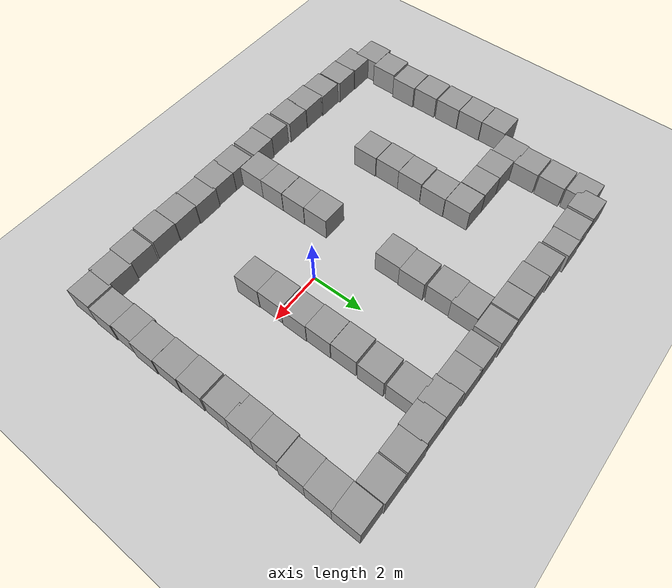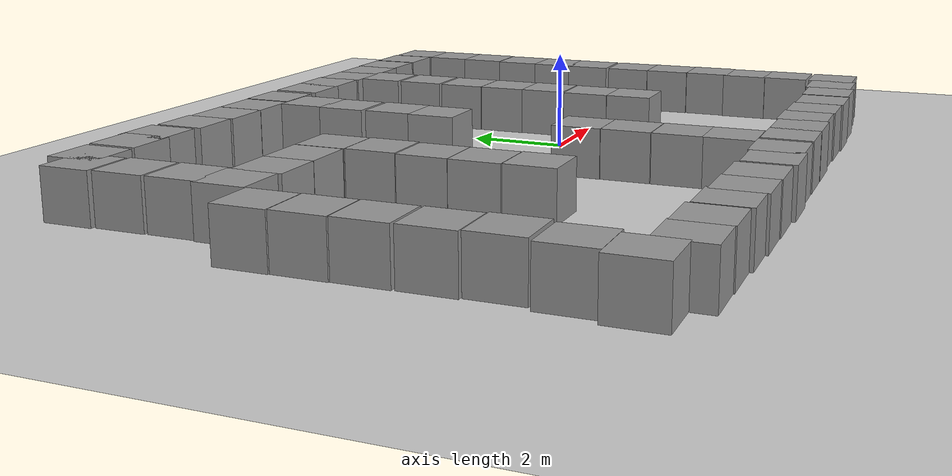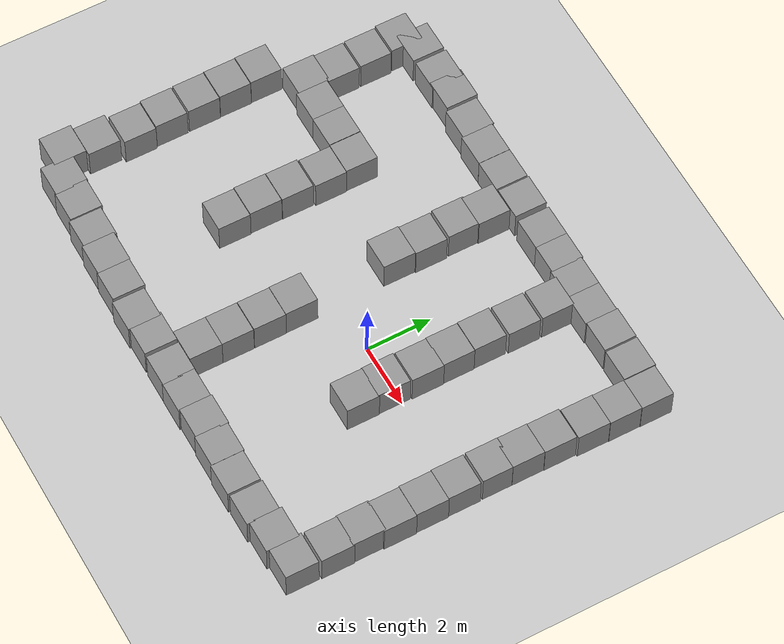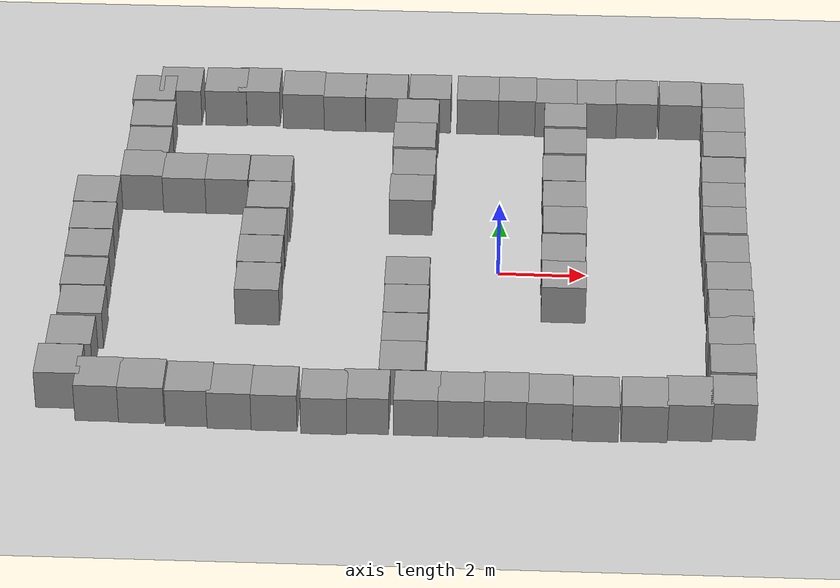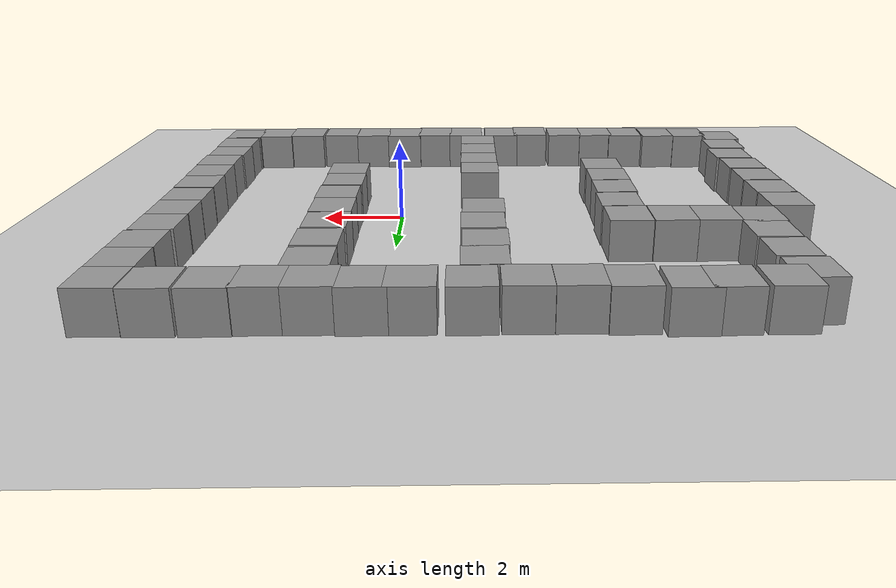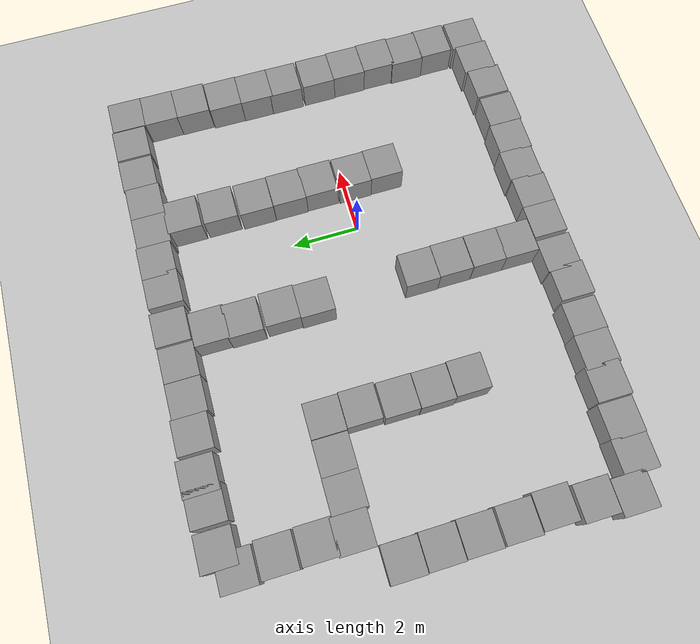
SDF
<sdf version="1.3">
 <world name="default">
  <light name="sun" type="directional">
   <pose>0.000000 0.000000 10.000000 0.000000 0.000000 0.000000</pose>
   <diffuse>0.800000 0.800000 0.800000 1.000000</diffuse>
   <specular>0.100000 0.100000 0.100000 1.000000</specular>
   <attenuation>
    <range>1000.000000</range>
    <constant>0.900000</constant>
    <linear>0.010000</linear>
    <quadratic>0.001000</quadratic>
   </attenuation>
   <direction>-0.500000 0.500000 -1.000000</direction>
  </light>
  <model name="ground_plane">
   <static>1</static>
   <link name="link">
    <collision name="collision">
     <geometry>
      <plane><normal>0.000000 0.000000 1.000000</normal><size>100.000000 100.000000</size></plane>
     </geometry>
     <surface><friction><ode><mu>100.000000</mu><mu2>50.000000</mu2></ode></friction></surface>
    </collision>
    <visual name="visual">
     <cast_shadows>0</cast_shadows>
     <geometry>
      <plane><normal>0.000000 0.000000 1.000000</normal><size>100.000000 100.000000</size></plane>
     </geometry>
     <material>
      <script><uri>file://media/materials/scripts/gazebo.material</uri><name>Gazebo/Grey</name></script>
     </material>
    </visual>
    <velocity_decay><linear>0.000000</linear><angular>0.000000</angular></velocity_decay>
   </link>
  </model>
  <physics type="ode">
   <update_rate>1000.000000</update_rate>
   <gravity>0.000000 0.000000 -9.800000</gravity>
  </physics>
  <scene>
   <ambient>0.200000 0.200000 0.200000 1.000000</ambient>
   <background>0.700000 0.700000 0.700000 1.000000</background>
   <shadows>1</shadows>
  </scene>
  <model name="ground_plane">
   <static>1</static>
   <link name="link">
    <collision name="collision">
     <geometry><plane><normal>0 0 1</normal><size>100 100</size></plane></geometry>
     <surface><friction><ode><mu>100</mu><mu2>50</mu2></ode></friction></surface>
    </collision>
    <visual name="visual">
     <cast_shadows>0</cast_shadows>
     <geometry><plane><normal>0 0 1</normal><size>100 100</size></plane></geometry>
     <material>
      <script><uri>file://media/materials/scripts/gazebo.material</uri><name>Gazebo/Grey</name></script>
     </material>
    </visual>
    <velocity_decay><linear>0</linear><angular>0</angular></velocity_decay>
   </link>
  </model>
  <physics name="default_physics" default="0" type="ode">
   <real_time_update_rate>1000</real_time_update_rate>
   <max_step_size>0.001</max_step_size>
   <real_time_factor>1</real_time_factor>
  </physics>
  <scene><ambient>0.2 0.2 0.2 1</ambient><background>0.7 0.7 0.7 1</background><shadows>1</shadows></scene>
  <model name="unit_box_0_3">
   <pose>5.24973 5.86866 0.5 0 -0 0</pose>
   <link name="link">
    <inertial>
     <mass>1</mass>
     <inertia>
      <ixx>0.166667</ixx>
      <ixy>0</ixy>
      <ixz>0</ixz>
      <iyy>0.166667</iyy>
      <iyz>0</iyz>
      <izz>0.166667</izz>
     </inertia>
    </inertial>
    <collision name="collision"><geometry><box><size>1 1 1</size></box></geometry></collision>
    <visual name="visual">
     <geometry><box><size>1 1 1</size></box></geometry>
     <material>
      <script><name>Gazebo/Grey</name><uri>file://media/materials/scripts/gazebo.material</uri></script>
     </material>
    </visual>
   </link>
  </model>
  <model name="unit_box_0_4">
   <pose>4.22875 5.90713 0.5 0 -0 0</pose>
   <link name="link">
    <inertial>
     <mass>1</mass>
     <inertia>
      <ixx>0.166667</ixx>
      <ixy>0</ixy>
      <ixz>0</ixz>
      <iyy>0.166667</iyy>
      <iyz>0</iyz>
      <izz>0.166667</izz>
     </inertia>
    </inertial>
    <collision name="collision"><geometry><box><size>1 1 1</size></box></geometry></collision>
    <visual name="visual">
     <geometry><box><size>1 1 1</size></box></geometry>
     <material>
      <script><name>Gazebo/Grey</name><uri>file://media/materials/scripts/gazebo.material</uri></script>
     </material>
    </visual>
   </link>
  </model>
  <model name="unit_box_0_5">
   <pose>3.18023 5.91348 0.5 0 -0 0</pose>
   <link name="link">
    <inertial>
     <mass>1</mass>
     <inertia>
      <ixx>0.166667</ixx>
      <ixy>0</ixy>
      <ixz>0</ixz>
      <iyy>0.166667</iyy>
      <iyz>0</iyz>
      <izz>0.166667</izz>
     </inertia>
    </inertial>
    <collision name="collision"><geometry><box><size>1 1 1</size></box></geometry></collision>
    <visual name="visual">
     <geometry><box><size>1 1 1</size></box></geometry>
     <material>
      <script><name>Gazebo/Grey</name><uri>file://media/materials/scripts/gazebo.material</uri></script>
     </material>
    </visual>
   </link>
  </model>
  <model name="unit_box_0_6">
   <pose>5.23691 4.88018 0.5 0 -0 0</pose>
   <link name="link">
    <inertial>
     <mass>1</mass>
     <inertia>
      <ixx>0.166667</ixx>
      <ixy>0</ixy>
      <ixz>0</ixz>
      <iyy>0.166667</iyy>
      <iyz>0</iyz>
      <izz>0.166667</izz>
     </inertia>
    </inertial>
    <collision name="collision"><geometry><box><size>1 1 1</size></box></geometry></collision>
    <visual name="visual">
     <geometry><box><size>1 1 1</size></box></geometry>
     <material>
      <script><name>Gazebo/Grey</name><uri>file://media/materials/scripts/gazebo.material</uri></script>
     </material>
    </visual>
   </link>
  </model>
  <model name="unit_box_0_7">
   <pose>5.2245 3.89038 0.5 0 -0 0</pose>
   <link name="link">
    <inertial>
     <mass>1</mass>
     <inertia>
      <ixx>0.166667</ixx>
      <ixy>0</ixy>
      <ixz>0</ixz>
      <iyy>0.166667</iyy>
      <iyz>0</iyz>
      <izz>0.166667</izz>
     </inertia>
    </inertial>
    <collision name="collision"><geometry><box><size>1 1 1</size></box></geometry></collision>
    <visual name="visual">
     <geometry><box><size>1 1 1</size></box></geometry>
     <material>
      <script><name>Gazebo/Grey</name><uri>file://media/materials/scripts/gazebo.material</uri></script>
     </material>
    </visual>
   </link>
  </model>
  <model name="unit_box_0_8">
   <pose>5.17263 2.86864 0.5 0 -0 0</pose>
   <link name="link">
    <inertial>
     <mass>1</mass>
     <inertia>
      <ixx>0.166667</ixx>
      <ixy>0</ixy>
      <ixz>0</ixz>
      <iyy>0.166667</iyy>
      <iyz>0</iyz>
      <izz>0.166667</izz>
     </inertia>
    </inertial>
    <collision name="collision"><geometry><box><size>1 1 1</size></box></geometry></collision>
    <visual name="visual">
     <geometry><box><size>1 1 1</size></box></geometry>
     <material>
      <script><name>Gazebo/Grey</name><uri>file://media/materials/scripts/gazebo.material</uri></script>
     </material>
    </visual>
   </link>
  </model>
  <model name="unit_box_0_9">
   <pose>5.16003 1.87663 0.5 0 -0 0</pose>
   <link name="link">
    <inertial>
     <mass>1</mass>
     <inertia>
      <ixx>0.166667</ixx>
      <ixy>0</ixy>
      <ixz>0</ixz>
      <iyy>0.166667</iyy>
      <iyz>0</iyz>
      <izz>0.166667</izz>
     </inertia>
    </inertial>
    <collision name="collision"><geometry><box><size>1 1 1</size></box></geometry></collision>
    <visual name="visual">
     <geometry><box><size>1 1 1</size></box></geometry>
     <material>
      <script><name>Gazebo/Grey</name><uri>file://media/materials/scripts/gazebo.material</uri></script>
     </material>
    </visual>
   </link>
  </model>
  <model name="unit_box_0_10">
   <pose>5.15547 0.951197 0.5 0 -0 0</pose>
   <link name="link">
    <inertial>
     <mass>1</mass>
     <inertia>
      <ixx>0.166667</ixx>
      <ixy>0</ixy>
      <ixz>0</ixz>
      <iyy>0.166667</iyy>
      <iyz>0</iyz>
      <izz>0.166667</izz>
     </inertia>
    </inertial>
    <collision name="collision"><geometry><box><size>1 1 1</size></box></geometry></collision>
    <visual name="visual">
     <geometry><box><size>1 1 1</size></box></geometry>
     <material>
      <script><name>Gazebo/Grey</name><uri>file://media/materials/scripts/gazebo.material</uri></script>
     </material>
    </visual>
   </link>
  </model>
  <model name="unit_box_0_11">
   <pose>5.17051 -0.115217 0.5 0 -0 0</pose>
   <link name="link">
    <inertial>
     <mass>1</mass>
     <inertia>
      <ixx>0.166667</ixx>
      <ixy>0</ixy>
      <ixz>0</ixz>
      <iyy>0.166667</iyy>
      <iyz>0</iyz>
      <izz>0.166667</izz>
     </inertia>
    </inertial>
    <collision name="collision"><geometry><box><size>1 1 1</size></box></geometry></collision>
    <visual name="visual">
     <geometry><box><size>1 1 1</size></box></geometry>
     <material>
      <script><name>Gazebo/Grey</name><uri>file://media/materials/scripts/gazebo.material</uri></script>
     </material>
    </visual>
   </link>
  </model>
  <model name="unit_box_0_12">
   <pose>5.19314 -1.11487 0.5 0 -0 0</pose>
   <link name="link">
    <inertial>
     <mass>1</mass>
     <inertia>
      <ixx>0.166667</ixx>
      <ixy>0</ixy>
      <ixz>0</ixz>
      <iyy>0.166667</iyy>
      <iyz>0</iyz>
      <izz>0.166667</izz>
     </inertia>
    </inertial>
    <collision name="collision"><geometry><box><size>1 1 1</size></box></geometry></collision>
    <visual name="visual">
     <geometry><box><size>1 1 1</size></box></geometry>
     <material>
      <script><name>Gazebo/Grey</name><uri>file://media/materials/scripts/gazebo.material</uri></script>
     </material>
    </visual>
   </link>
  </model>
  <model name="unit_box_0_13">
   <pose>5.21609 -2.11612 0.5 0 -0 0</pose>
   <link name="link">
    <inertial>
     <mass>1</mass>
     <inertia>
      <ixx>0.166667</ixx>
      <ixy>0</ixy>
      <ixz>0</ixz>
      <iyy>0.166667</iyy>
      <iyz>0</iyz>
      <izz>0.166667</izz>
     </inertia>
    </inertial>
    <collision name="collision"><geometry><box><size>1 1 1</size></box></geometry></collision>
    <visual name="visual">
     <geometry><box><size>1 1 1</size></box></geometry>
     <material>
      <script><name>Gazebo/Grey</name><uri>file://media/materials/scripts/gazebo.material</uri></script>
     </material>
    </visual>
   </link>
  </model>
  <model name="unit_box_0_14">
   <pose>5.17628 -3.04236 0.5 0 -0 0</pose>
   <link name="link">
    <inertial>
     <mass>1</mass>
     <inertia>
      <ixx>0.166667</ixx>
      <ixy>0</ixy>
      <ixz>0</ixz>
      <iyy>0.166667</iyy>
      <iyz>0</iyz>
      <izz>0.166667</izz>
     </inertia>
    </inertial>
    <collision name="collision"><geometry><box><size>1 1 1</size></box></geometry></collision>
    <visual name="visual">
     <geometry><box><size>1 1 1</size></box></geometry>
     <material>
      <script><name>Gazebo/Grey</name><uri>file://media/materials/scripts/gazebo.material</uri></script>
     </material>
    </visual>
   </link>
  </model>
  <model name="unit_box_0_15">
   <pose>5.20325 -4.01238 0.5 0 -0 0</pose>
   <link name="link">
    <inertial>
     <mass>1</mass>
     <inertia>
      <ixx>0.166667</ixx>
      <ixy>0</ixy>
      <ixz>0</ixz>
      <iyy>0.166667</iyy>
      <iyz>0</iyz>
      <izz>0.166667</izz>
     </inertia>
    </inertial>
    <collision name="collision"><geometry><box><size>1 1 1</size></box></geometry></collision>
    <visual name="visual">
     <geometry><box><size>1 1 1</size></box></geometry>
     <material>
      <script><name>Gazebo/Grey</name><uri>file://media/materials/scripts/gazebo.material</uri></script>
     </material>
    </visual>
   </link>
  </model>
  <model name="unit_box_0_16">
   <pose>5.18265 -5.08137 0.5 0 -0 0</pose>
   <link name="link">
    <inertial>
     <mass>1</mass>
     <inertia>
      <ixx>0.166667</ixx>
      <ixy>0</ixy>
      <ixz>0</ixz>
      <iyy>0.166667</iyy>
      <iyz>0</iyz>
      <izz>0.166667</izz>
     </inertia>
    </inertial>
    <collision name="collision"><geometry><box><size>1 1 1</size></box></geometry></collision>
    <visual name="visual">
     <geometry><box><size>1 1 1</size></box></geometry>
     <material>
      <script><name>Gazebo/Grey</name><uri>file://media/materials/scripts/gazebo.material</uri></script>
     </material>
    </visual>
   </link>
  </model>
  <model name="unit_box_0_17">
   <pose>4.2397 -5.1626 0.5 0 -0 0</pose>
   <link name="link">
    <inertial>
     <mass>1</mass>
     <inertia>
      <ixx>0.166667</ixx>
      <ixy>0</ixy>
      <ixz>0</ixz>
      <iyy>0.166667</iyy>
      <iyz>0</iyz>
      <izz>0.166667</izz>
     </inertia>
    </inertial>
    <collision name="collision"><geometry><box><size>1 1 1</size></box></geometry></collision>
    <visual name="visual">
     <geometry><box><size>1 1 1</size></box></geometry>
     <material>
      <script><name>Gazebo/Grey</name><uri>file://media/materials/scripts/gazebo.material</uri></script>
     </material>
    </visual>
   </link>
  </model>
  <model name="unit_box_0_18">
   <pose>3.27178 -5.23841 0.5 0 -0 0</pose>
   <link name="link">
    <inertial>
     <mass>1</mass>
     <inertia>
      <ixx>0.166667</ixx>
      <ixy>0</ixy>
      <ixz>0</ixz>
      <iyy>0.166667</iyy>
      <iyz>0</iyz>
      <izz>0.166667</izz>
     </inertia>
    </inertial>
    <collision name="collision"><geometry><box><size>1 1 1</size></box></geometry></collision>
    <visual name="visual">
     <geometry><box><size>1 1 1</size></box></geometry>
     <material>
      <script><name>Gazebo/Grey</name><uri>file://media/materials/scripts/gazebo.material</uri></script>
     </material>
    </visual>
   </link>
  </model>
  <model name="unit_box_0_19">
   <pose>2.20895 5.88237 0.5 0 -0 0</pose>
   <link name="link">
    <inertial>
     <mass>1</mass>
     <inertia>
      <ixx>0.166667</ixx>
      <ixy>0</ixy>
      <ixz>0</ixz>
      <iyy>0.166667</iyy>
      <iyz>0</iyz>
      <izz>0.166667</izz>
     </inertia>
    </inertial>
    <collision name="collision"><geometry><box><size>1 1 1</size></box></geometry></collision>
    <visual name="visual">
     <geometry><box><size>1 1 1</size></box></geometry>
     <material>
      <script><name>Gazebo/Grey</name><uri>file://media/materials/scripts/gazebo.material</uri></script>
     </material>
    </visual>
   </link>
  </model>
  <model name="unit_box_0_20">
   <pose>1.25233 5.88436 0.5 0 -0 0</pose>
   <link name="link">
    <inertial>
     <mass>1</mass>
     <inertia>
      <ixx>0.166667</ixx>
      <ixy>0</ixy>
      <ixz>0</ixz>
      <iyy>0.166667</iyy>
      <iyz>0</iyz>
      <izz>0.166667</izz>
     </inertia>
    </inertial>
    <collision name="collision"><geometry><box><size>1 1 1</size></box></geometry></collision>
    <visual name="visual">
     <geometry><box><size>1 1 1</size></box></geometry>
     <material>
      <script><name>Gazebo/Grey</name><uri>file://media/materials/scripts/gazebo.material</uri></script>
     </material>
    </visual>
   </link>
  </model>
  <model name="unit_box_0_21">
   <pose>2.21563 -5.26567 0.5 0 -0 0</pose>
   <link name="link">
    <inertial>
     <mass>1</mass>
     <inertia>
      <ixx>0.166667</ixx>
      <ixy>0</ixy>
      <ixz>0</ixz>
      <iyy>0.166667</iyy>
      <iyz>0</iyz>
      <izz>0.166667</izz>
     </inertia>
    </inertial>
    <collision name="collision"><geometry><box><size>1 1 1</size></box></geometry></collision>
    <visual name="visual">
     <geometry><box><size>1 1 1</size></box></geometry>
     <material>
      <script><name>Gazebo/Grey</name><uri>file://media/materials/scripts/gazebo.material</uri></script>
     </material>
    </visual>
   </link>
  </model>
  <model name="unit_box_0_22">
   <pose>1.21357 -5.23109 0.5 0 -0 0</pose>
   <link name="link">
    <inertial>
     <mass>1</mass>
     <inertia>
      <ixx>0.166667</ixx>
      <ixy>0</ixy>
      <ixz>0</ixz>
      <iyy>0.166667</iyy>
      <iyz>0</iyz>
      <izz>0.166667</izz>
     </inertia>
    </inertial>
    <collision name="collision"><geometry><box><size>1 1 1</size></box></geometry></collision>
    <visual name="visual">
     <geometry><box><size>1 1 1</size></box></geometry>
     <material>
      <script><name>Gazebo/Grey</name><uri>file://media/materials/scripts/gazebo.material</uri></script>
     </material>
    </visual>
   </link>
  </model>
  <model name="unit_box_0_23">
   <pose>0.256103 -5.20129 0.5 0 -0 0</pose>
   <link name="link">
    <inertial>
     <mass>1</mass>
     <inertia>
      <ixx>0.166667</ixx>
      <ixy>0</ixy>
      <ixz>0</ixz>
      <iyy>0.166667</iyy>
      <iyz>0</iyz>
      <izz>0.166667</izz>
     </inertia>
    </inertial>
    <collision name="collision"><geometry><box><size>1 1 1</size></box></geometry></collision>
    <visual name="visual">
     <geometry><box><size>1 1 1</size></box></geometry>
     <material>
      <script><name>Gazebo/Grey</name><uri>file://media/materials/scripts/gazebo.material</uri></script>
     </material>
    </visual>
   </link>
  </model>
  <model name="unit_box_0_24">
   <pose>0.276411 5.9219 0.5 0 -0 0</pose>
   <link name="link">
    <inertial>
     <mass>1</mass>
     <inertia>
      <ixx>0.166667</ixx>
      <ixy>0</ixy>
      <ixz>0</ixz>
      <iyy>0.166667</iyy>
      <iyz>0</iyz>
      <izz>0.166667</izz>
     </inertia>
    </inertial>
    <collision name="collision"><geometry><box><size>1 1 1</size></box></geometry></collision>
    <visual name="visual">
     <geometry><box><size>1 1 1</size></box></geometry>
     <material>
      <script><name>Gazebo/Grey</name><uri>file://media/materials/scripts/gazebo.material</uri></script>
     </material>
    </visual>
   </link>
  </model>
  <model name="unit_box_0_25">
   <pose>-0.626418 5.92112 0.5 0 -0 0</pose>
   <link name="link">
    <inertial>
     <mass>1</mass>
     <inertia>
      <ixx>0.166667</ixx>
      <ixy>0</ixy>
      <ixz>0</ixz>
      <iyy>0.166667</iyy>
      <iyz>0</iyz>
      <izz>0.166667</izz>
     </inertia>
    </inertial>
    <collision name="collision"><geometry><box><size>1 1 1</size></box></geometry></collision>
    <visual name="visual">
     <geometry><box><size>1 1 1</size></box></geometry>
     <material>
      <script><name>Gazebo/Grey</name><uri>file://media/materials/scripts/gazebo.material</uri></script>
     </material>
    </visual>
   </link>
  </model>
  <model name="unit_box_0_26">
   <pose>-0.698826 -5.23775 0.5 0 -0 0</pose>
   <link name="link">
    <inertial>
     <mass>1</mass>
     <inertia>
      <ixx>0.166667</ixx>
      <ixy>0</ixy>
      <ixz>0</ixz>
      <iyy>0.166667</iyy>
      <iyz>0</iyz>
      <izz>0.166667</izz>
     </inertia>
    </inertial>
    <collision name="collision"><geometry><box><size>1 1 1</size></box></geometry></collision>
    <visual name="visual">
     <geometry><box><size>1 1 1</size></box></geometry>
     <material>
      <script><name>Gazebo/Grey</name><uri>file://media/materials/scripts/gazebo.material</uri></script>
     </material>
    </visual>
   </link>
  </model>
  <model name="unit_box_0_27">
   <pose>-1.78068 5.93945 0.5 0 -0 0</pose>
   <link name="link">
    <inertial>
     <mass>1</mass>
     <inertia>
      <ixx>0.166667</ixx>
      <ixy>0</ixy>
      <ixz>0</ixz>
      <iyy>0.166667</iyy>
      <iyz>0</iyz>
      <izz>0.166667</izz>
     </inertia>
    </inertial>
    <collision name="collision"><geometry><box><size>1 1 1</size></box></geometry></collision>
    <visual name="visual">
     <geometry><box><size>1 1 1</size></box></geometry>
     <material>
      <script><name>Gazebo/Grey</name><uri>file://media/materials/scripts/gazebo.material</uri></script>
     </material>
    </visual>
   </link>
  </model>
  <model name="unit_box_0_28">
   <pose>-2.82699 5.91839 0.5 0 -0 0</pose>
   <link name="link">
    <inertial>
     <mass>1</mass>
     <inertia>
      <ixx>0.166667</ixx>
      <ixy>0</ixy>
      <ixz>0</ixz>
      <iyy>0.166667</iyy>
      <iyz>0</iyz>
      <izz>0.166667</izz>
     </inertia>
    </inertial>
    <collision name="collision"><geometry><box><size>1 1 1</size></box></geometry></collision>
    <visual name="visual">
     <geometry><box><size>1 1 1</size></box></geometry>
     <material>
      <script><name>Gazebo/Grey</name><uri>file://media/materials/scripts/gazebo.material</uri></script>
     </material>
    </visual>
   </link>
  </model>
  <model name="unit_box_0_29">
   <pose>1.4783 4.93269 0.5 0 -0 0</pose>
   <link name="link">
    <inertial>
     <mass>1</mass>
     <inertia>
      <ixx>0.166667</ixx>
      <ixy>0</ixy>
      <ixz>0</ixz>
      <iyy>0.166667</iyy>
      <iyz>0</iyz>
      <izz>0.166667</izz>
     </inertia>
    </inertial>
    <collision name="collision"><geometry><box><size>1 1 1</size></box></geometry></collision>
    <visual name="visual">
     <geometry><box><size>1 1 1</size></box></geometry>
     <material>
      <script><name>Gazebo/Grey</name><uri>file://media/materials/scripts/gazebo.material</uri></script>
     </material>
    </visual>
   </link>
  </model>
  <model name="unit_box_0_30">
   <pose>1.48551 3.86142 0.5 0 -0 0</pose>
   <link name="link">
    <inertial>
     <mass>1</mass>
     <inertia>
      <ixx>0.166667</ixx>
      <ixy>0</ixy>
      <ixz>0</ixz>
      <iyy>0.166667</iyy>
      <iyz>0</iyz>
      <izz>0.166667</izz>
     </inertia>
    </inertial>
    <collision name="collision"><geometry><box><size>1 1 1</size></box></geometry></collision>
    <visual name="visual">
     <geometry><box><size>1 1 1</size></box></geometry>
     <material>
      <script><name>Gazebo/Grey</name><uri>file://media/materials/scripts/gazebo.material</uri></script>
     </material>
    </visual>
   </link>
  </model>
  <model name="unit_box_0_31">
   <pose>1.45917 2.79176 0.5 0 -0 0</pose>
   <link name="link">
    <inertial>
     <mass>1</mass>
     <inertia>
      <ixx>0.166667</ixx>
      <ixy>0</ixy>
      <ixz>0</ixz>
      <iyy>0.166667</iyy>
      <iyz>0</iyz>
      <izz>0.166667</izz>
     </inertia>
    </inertial>
    <collision name="collision"><geometry><box><size>1 1 1</size></box></geometry></collision>
    <visual name="visual">
     <geometry><box><size>1 1 1</size></box></geometry>
     <material>
      <script><name>Gazebo/Grey</name><uri>file://media/materials/scripts/gazebo.material</uri></script>
     </material>
    </visual>
   </link>
  </model>
  <model name="unit_box_0_32">
   <pose>1.47478 1.78383 0.5 0 -0 0</pose>
   <link name="link">
    <inertial>
     <mass>1</mass>
     <inertia>
      <ixx>0.166667</ixx>
      <ixy>0</ixy>
      <ixz>0</ixz>
      <iyy>0.166667</iyy>
      <iyz>0</iyz>
      <izz>0.166667</izz>
     </inertia>
    </inertial>
    <collision name="collision"><geometry><box><size>1 1 1</size></box></geometry></collision>
    <visual name="visual">
     <geometry><box><size>1 1 1</size></box></geometry>
     <material>
      <script><name>Gazebo/Grey</name><uri>file://media/materials/scripts/gazebo.material</uri></script>
     </material>
    </visual>
   </link>
  </model>
  <model name="unit_box_0_33">
   <pose>1.49416 0.807626 0.5 0 -0 0</pose>
   <link name="link">
    <inertial>
     <mass>1</mass>
     <inertia>
      <ixx>0.166667</ixx>
      <ixy>0</ixy>
      <ixz>0</ixz>
      <iyy>0.166667</iyy>
      <iyz>0</iyz>
      <izz>0.166667</izz>
     </inertia>
    </inertial>
    <collision name="collision"><geometry><box><size>1 1 1</size></box></geometry></collision>
    <visual name="visual">
     <geometry><box><size>1 1 1</size></box></geometry>
     <material>
      <script><name>Gazebo/Grey</name><uri>file://media/materials/scripts/gazebo.material</uri></script>
     </material>
    </visual>
   </link>
  </model>
  <model name="unit_box_0_34">
   <pose>1.47068 -0.232937 0.5 0 -0 0</pose>
   <link name="link">
    <inertial>
     <mass>1</mass>
     <inertia>
      <ixx>0.166667</ixx>
      <ixy>0</ixy>
      <ixz>0</ixz>
      <iyy>0.166667</iyy>
      <iyz>0</iyz>
      <izz>0.166667</izz>
     </inertia>
    </inertial>
    <collision name="collision"><geometry><box><size>1 1 1</size></box></geometry></collision>
    <visual name="visual">
     <geometry><box><size>1 1 1</size></box></geometry>
     <material>
      <script><name>Gazebo/Grey</name><uri>file://media/materials/scripts/gazebo.material</uri></script>
     </material>
    </visual>
   </link>
  </model>
  <model name="unit_box_0_35">
   <pose>1.49013 -1.21214 0.5 0 -0 0</pose>
   <link name="link">
    <inertial>
     <mass>1</mass>
     <inertia>
      <ixx>0.166667</ixx>
      <ixy>0</ixy>
      <ixz>0</ixz>
      <iyy>0.166667</iyy>
      <iyz>0</iyz>
      <izz>0.166667</izz>
     </inertia>
    </inertial>
    <collision name="collision"><geometry><box><size>1 1 1</size></box></geometry></collision>
    <visual name="visual">
     <geometry><box><size>1 1 1</size></box></geometry>
     <material>
      <script><name>Gazebo/Grey</name><uri>file://media/materials/scripts/gazebo.material</uri></script>
     </material>
    </visual>
   </link>
  </model>
  <model name="unit_box_0_39">
   <pose>-1.65775 -5.2327 0.5 0 -0 0</pose>
   <link name="link">
    <inertial>
     <mass>1</mass>
     <inertia>
      <ixx>0.166667</ixx>
      <ixy>0</ixy>
      <ixz>0</ixz>
      <iyy>0.166667</iyy>
      <iyz>0</iyz>
      <izz>0.166667</izz>
     </inertia>
    </inertial>
    <collision name="collision"><geometry><box><size>1 1 1</size></box></geometry></collision>
    <visual name="visual">
     <geometry><box><size>1 1 1</size></box></geometry>
     <material>
      <script><name>Gazebo/Grey</name><uri>file://media/materials/scripts/gazebo.material</uri></script>
     </material>
    </visual>
   </link>
  </model>
  <model name="unit_box_0_40">
   <pose>-2.76214 -5.22389 0.5 0 -0 0</pose>
   <link name="link">
    <inertial>
     <mass>1</mass>
     <inertia>
      <ixx>0.166667</ixx>
      <ixy>0</ixy>
      <ixz>0</ixz>
      <iyy>0.166667</iyy>
      <iyz>0</iyz>
      <izz>0.166667</izz>
     </inertia>
    </inertial>
    <collision name="collision"><geometry><box><size>1 1 1</size></box></geometry></collision>
    <visual name="visual">
     <geometry><box><size>1 1 1</size></box></geometry>
     <material>
      <script><name>Gazebo/Grey</name><uri>file://media/materials/scripts/gazebo.material</uri></script>
     </material>
    </visual>
   </link>
  </model>
  <model name="unit_box_0_41">
   <pose>-2.01864 -4.22015 0.5 0 -0 0</pose>
   <link name="link">
    <inertial>
     <mass>1</mass>
     <inertia>
      <ixx>0.166667</ixx>
      <ixy>0</ixy>
      <ixz>0</ixz>
      <iyy>0.166667</iyy>
      <iyz>0</iyz>
      <izz>0.166667</izz>
     </inertia>
    </inertial>
    <collision name="collision"><geometry><box><size>1 1 1</size></box></geometry></collision>
    <visual name="visual">
     <geometry><box><size>1 1 1</size></box></geometry>
     <material>
      <script><name>Gazebo/Grey</name><uri>file://media/materials/scripts/gazebo.material</uri></script>
     </material>
    </visual>
   </link>
  </model>
  <model name="unit_box_0_42">
   <pose>-2.01893 -3.2406 0.5 0 -0 0</pose>
   <link name="link">
    <inertial>
     <mass>1</mass>
     <inertia>
      <ixx>0.166667</ixx>
      <ixy>0</ixy>
      <ixz>0</ixz>
      <iyy>0.166667</iyy>
      <iyz>0</iyz>
      <izz>0.166667</izz>
     </inertia>
    </inertial>
    <collision name="collision"><geometry><box><size>1 1 1</size></box></geometry></collision>
    <visual name="visual">
     <geometry><box><size>1 1 1</size></box></geometry>
     <material>
      <script><name>Gazebo/Grey</name><uri>file://media/materials/scripts/gazebo.material</uri></script>
     </material>
    </visual>
   </link>
  </model>
  <model name="unit_box_0_43">
   <pose>-2.02326 -2.22912 0.5 0 -0 0</pose>
   <link name="link">
    <inertial>
     <mass>1</mass>
     <inertia>
      <ixx>0.166667</ixx>
      <ixy>0</ixy>
      <ixz>0</ixz>
      <iyy>0.166667</iyy>
      <iyz>0</iyz>
      <izz>0.166667</izz>
     </inertia>
    </inertial>
    <collision name="collision"><geometry><box><size>1 1 1</size></box></geometry></collision>
    <visual name="visual">
     <geometry><box><size>1 1 1</size></box></geometry>
     <material>
      <script><name>Gazebo/Grey</name><uri>file://media/materials/scripts/gazebo.material</uri></script>
     </material>
    </visual>
   </link>
  </model>
  <model name="unit_box_0_44">
   <pose>-2.0382 -1.22645 0.5 0 -0 0</pose>
   <link name="link">
    <inertial>
     <mass>1</mass>
     <inertia>
      <ixx>0.166667</ixx>
      <ixy>0</ixy>
      <ixz>0</ixz>
      <iyy>0.166667</iyy>
      <iyz>0</iyz>
      <izz>0.166667</izz>
     </inertia>
    </inertial>
    <collision name="collision"><geometry><box><size>1 1 1</size></box></geometry></collision>
    <visual name="visual">
     <geometry><box><size>1 1 1</size></box></geometry>
     <material>
      <script><name>Gazebo/Grey</name><uri>file://media/materials/scripts/gazebo.material</uri></script>
     </material>
    </visual>
   </link>
  </model>
  <model name="unit_box_0_45">
   <pose>-2.04783 4.91305 0.5 0 -0 0</pose>
   <link name="link">
    <inertial>
     <mass>1</mass>
     <inertia>
      <ixx>0.166667</ixx>
      <ixy>0</ixy>
      <ixz>0</ixz>
      <iyy>0.166667</iyy>
      <iyz>0</iyz>
      <izz>0.166667</izz>
     </inertia>
    </inertial>
    <collision name="collision"><geometry><box><size>1 1 1</size></box></geometry></collision>
    <visual name="visual">
     <geometry><box><size>1 1 1</size></box></geometry>
     <material>
      <script><name>Gazebo/Grey</name><uri>file://media/materials/scripts/gazebo.material</uri></script>
     </material>
    </visual>
   </link>
  </model>
  <model name="unit_box_0_46">
   <pose>-2.08008 3.96348 0.5 0 -0 0</pose>
   <link name="link">
    <inertial>
     <mass>1</mass>
     <inertia>
      <ixx>0.166667</ixx>
      <ixy>0</ixy>
      <ixz>0</ixz>
      <iyy>0.166667</iyy>
      <iyz>0</iyz>
      <izz>0.166667</izz>
     </inertia>
    </inertial>
    <collision name="collision"><geometry><box><size>1 1 1</size></box></geometry></collision>
    <visual name="visual">
     <geometry><box><size>1 1 1</size></box></geometry>
     <material>
      <script><name>Gazebo/Grey</name><uri>file://media/materials/scripts/gazebo.material</uri></script>
     </material>
    </visual>
   </link>
  </model>
  <model name="unit_box_0_47">
   <pose>-2.04515 2.88862 0.5 0 -0 0</pose>
   <link name="link">
    <inertial>
     <mass>1</mass>
     <inertia>
      <ixx>0.166667</ixx>
      <ixy>0</ixy>
      <ixz>0</ixz>
      <iyy>0.166667</iyy>
      <iyz>0</iyz>
      <izz>0.166667</izz>
     </inertia>
    </inertial>
    <collision name="collision"><geometry><box><size>1 1 1</size></box></geometry></collision>
    <visual name="visual">
     <geometry><box><size>1 1 1</size></box></geometry>
     <material>
      <script><name>Gazebo/Grey</name><uri>file://media/materials/scripts/gazebo.material</uri></script>
     </material>
    </visual>
   </link>
  </model>
  <model name="unit_box_0_48">
   <pose>-2.07744 1.88846 0.5 0 -0 0</pose>
   <link name="link">
    <inertial>
     <mass>1</mass>
     <inertia>
      <ixx>0.166667</ixx>
      <ixy>0</ixy>
      <ixz>0</ixz>
      <iyy>0.166667</iyy>
      <iyz>0</iyz>
      <izz>0.166667</izz>
     </inertia>
    </inertial>
    <collision name="collision"><geometry><box><size>1 1 1</size></box></geometry></collision>
    <visual name="visual">
     <geometry><box><size>1 1 1</size></box></geometry>
     <material>
      <script><name>Gazebo/Grey</name><uri>file://media/materials/scripts/gazebo.material</uri></script>
     </material>
    </visual>
   </link>
  </model>
  <model name="unit_box_0_49">
   <pose>-5.40748 0.453238 0.5 0 -0 0</pose>
   <link name="link">
    <inertial>
     <mass>1</mass>
     <inertia>
      <ixx>0.166667</ixx>
      <ixy>0</ixy>
      <ixz>0</ixz>
      <iyy>0.166667</iyy>
      <iyz>0</iyz>
      <izz>0.166667</izz>
     </inertia>
    </inertial>
    <collision name="collision"><geometry><box><size>1 1 1</size></box></geometry></collision>
    <visual name="visual">
     <geometry><box><size>1 1 1</size></box></geometry>
     <material>
      <script><name>Gazebo/Grey</name><uri>file://media/materials/scripts/gazebo.material</uri></script>
     </material>
    </visual>
   </link>
  </model>
  <model name="unit_box_0_50">
   <pose>-5.41687 -0.554084 0.5 0 -0 0</pose>
   <link name="link">
    <inertial>
     <mass>1</mass>
     <inertia>
      <ixx>0.166667</ixx>
      <ixy>0</ixy>
      <ixz>0</ixz>
      <iyy>0.166667</iyy>
      <iyz>0</iyz>
      <izz>0.166667</izz>
     </inertia>
    </inertial>
    <collision name="collision"><geometry><box><size>1 1 1</size></box></geometry></collision>
    <visual name="visual">
     <geometry><box><size>1 1 1</size></box></geometry>
     <material>
      <script><name>Gazebo/Grey</name><uri>file://media/materials/scripts/gazebo.material</uri></script>
     </material>
    </visual>
   </link>
  </model>
  <model name="unit_box_0_51">
   <pose>-5.35994 1.49361 0.5 0 -0 0</pose>
   <link name="link">
    <inertial>
     <mass>1</mass>
     <inertia>
      <ixx>0.166667</ixx>
      <ixy>0</ixy>
      <ixz>0</ixz>
      <iyy>0.166667</iyy>
      <iyz>0</iyz>
      <izz>0.166667</izz>
     </inertia>
    </inertial>
    <collision name="collision"><geometry><box><size>1 1 1</size></box></geometry></collision>
    <visual name="visual">
     <geometry><box><size>1 1 1</size></box></geometry>
     <material>
      <script><name>Gazebo/Grey</name><uri>file://media/materials/scripts/gazebo.material</uri></script>
     </material>
    </visual>
   </link>
  </model>
  <model name="unit_box_0_52">
   <pose>-5.39127 -1.56497 0.5 0 -0 0</pose>
   <link name="link">
    <inertial>
     <mass>1</mass>
     <inertia>
      <ixx>0.166667</ixx>
      <ixy>0</ixy>
      <ixz>0</ixz>
      <iyy>0.166667</iyy>
      <iyz>0</iyz>
      <izz>0.166667</izz>
     </inertia>
    </inertial>
    <collision name="collision"><geometry><box><size>1 1 1</size></box></geometry></collision>
    <visual name="visual">
     <geometry><box><size>1 1 1</size></box></geometry>
     <material>
      <script><name>Gazebo/Grey</name><uri>file://media/materials/scripts/gazebo.material</uri></script>
     </material>
    </visual>
   </link>
  </model>
  <model name="unit_box_0_53">
   <pose>-5.3855 2.50053 0.5 0 -0 0</pose>
   <link name="link">
    <inertial>
     <mass>1</mass>
     <inertia>
      <ixx>0.166667</ixx>
      <ixy>0</ixy>
      <ixz>0</ixz>
      <iyy>0.166667</iyy>
      <iyz>0</iyz>
      <izz>0.166667</izz>
     </inertia>
    </inertial>
    <collision name="collision"><geometry><box><size>1 1 1</size></box></geometry></collision>
    <visual name="visual">
     <geometry><box><size>1 1 1</size></box></geometry>
     <material>
      <script><name>Gazebo/Grey</name><uri>file://media/materials/scripts/gazebo.material</uri></script>
     </material>
    </visual>
   </link>
  </model>
  <model name="unit_box_0_54">
   <pose>-3.83224 5.91927 0.5 0 -0 0</pose>
   <link name="link">
    <inertial>
     <mass>1</mass>
     <inertia>
      <ixx>0.166667</ixx>
      <ixy>0</ixy>
      <ixz>0</ixz>
      <iyy>0.166667</iyy>
      <iyz>0</iyz>
      <izz>0.166667</izz>
     </inertia>
    </inertial>
    <collision name="collision"><geometry><box><size>1 1 1</size></box></geometry></collision>
    <visual name="visual">
     <geometry><box><size>1 1 1</size></box></geometry>
     <material>
      <script><name>Gazebo/Grey</name><uri>file://media/materials/scripts/gazebo.material</uri></script>
     </material>
    </visual>
   </link>
  </model>
  <model name="unit_box_0_55">
   <pose>-6.4003 2.50427 0.5 0 -0 0</pose>
   <link name="link">
    <inertial>
     <mass>1</mass>
     <inertia>
      <ixx>0.166667</ixx>
      <ixy>0</ixy>
      <ixz>0</ixz>
      <iyy>0.166667</iyy>
      <iyz>0</iyz>
      <izz>0.166667</izz>
     </inertia>
    </inertial>
    <collision name="collision"><geometry><box><size>1 1 1</size></box></geometry></collision>
    <visual name="visual">
     <geometry><box><size>1 1 1</size></box></geometry>
     <material>
      <script><name>Gazebo/Grey</name><uri>file://media/materials/scripts/gazebo.material</uri></script>
     </material>
    </visual>
   </link>
  </model>
  <model name="unit_box_0_56">
   <pose>-7.39959 2.50775 0.5 0 -0 0</pose>
   <link name="link">
    <inertial>
     <mass>1</mass>
     <inertia>
      <ixx>0.166667</ixx>
      <ixy>0</ixy>
      <ixz>0</ixz>
      <iyy>0.166667</iyy>
      <iyz>0</iyz>
      <izz>0.166667</izz>
     </inertia>
    </inertial>
    <collision name="collision"><geometry><box><size>1 1 1</size></box></geometry></collision>
    <visual name="visual">
     <geometry><box><size>1 1 1</size></box></geometry>
     <material>
      <script><name>Gazebo/Grey</name><uri>file://media/materials/scripts/gazebo.material</uri></script>
     </material>
    </visual>
   </link>
  </model>
  <model name="unit_box_0_59">
   <pose>-6.7076 6.02798 0.5 0 -0 0</pose>
   <link name="link">
    <inertial>
     <mass>1</mass>
     <inertia>
      <ixx>0.166667</ixx>
      <ixy>0</ixy>
      <ixz>0</ixz>
      <iyy>0.166667</iyy>
      <iyz>0</iyz>
      <izz>0.166667</izz>
     </inertia>
    </inertial>
    <collision name="collision"><geometry><box><size>1 1 1</size></box></geometry></collision>
    <visual name="visual">
     <geometry><box><size>1 1 1</size></box></geometry>
     <material>
      <script><name>Gazebo/Grey</name><uri>file://media/materials/scripts/gazebo.material</uri></script>
     </material>
    </visual>
   </link>
  </model>
  <model name="unit_box_0_60">
   <pose>-5.90904 6.05464 0.5 0 -0 0</pose>
   <link name="link">
    <inertial>
     <mass>1</mass>
     <inertia>
      <ixx>0.166667</ixx>
      <ixy>0</ixy>
      <ixz>0</ixz>
      <iyy>0.166667</iyy>
      <iyz>0</iyz>
      <izz>0.166667</izz>
     </inertia>
    </inertial>
    <collision name="collision"><geometry><box><size>1 1 1</size></box></geometry></collision>
    <visual name="visual">
     <geometry><box><size>1 1 1</size></box></geometry>
     <material>
      <script><name>Gazebo/Grey</name><uri>file://media/materials/scripts/gazebo.material</uri></script>
     </material>
    </visual>
   </link>
  </model>
  <model name="unit_box_0_61">
   <pose>-4.82684 5.96915 0.5 0 -0 0</pose>
   <link name="link">
    <inertial>
     <mass>1</mass>
     <inertia>
      <ixx>0.166667</ixx>
      <ixy>0</ixy>
      <ixz>0</ixz>
      <iyy>0.166667</iyy>
      <iyz>0</iyz>
      <izz>0.166667</izz>
     </inertia>
    </inertial>
    <collision name="collision"><geometry><box><size>1 1 1</size></box></geometry></collision>
    <visual name="visual">
     <geometry><box><size>1 1 1</size></box></geometry>
     <material>
      <script><name>Gazebo/Grey</name><uri>file://media/materials/scripts/gazebo.material</uri></script>
     </material>
    </visual>
   </link>
  </model>
  <model name="unit_box_0_62">
   <pose>-8.37853 2.5829 0.5 0 -0 0</pose>
   <link name="link">
    <inertial>
     <mass>1</mass>
     <inertia>
      <ixx>0.166667</ixx>
      <ixy>0</ixy>
      <ixz>0</ixz>
      <iyy>0.166667</iyy>
      <iyz>0</iyz>
      <izz>0.166667</izz>
     </inertia>
    </inertial>
    <collision name="collision"><geometry><box><size>1 1 1</size></box></geometry></collision>
    <visual name="visual">
     <geometry><box><size>1 1 1</size></box></geometry>
     <material>
      <script><name>Gazebo/Grey</name><uri>file://media/materials/scripts/gazebo.material</uri></script>
     </material>
    </visual>
   </link>
  </model>
  <model name="unit_box_0_63">
   <pose>-8.3369 3.52901 0.5 0 -0 0</pose>
   <link name="link">
    <inertial>
     <mass>1</mass>
     <inertia>
      <ixx>0.166667</ixx>
      <ixy>0</ixy>
      <ixz>0</ixz>
      <iyy>0.166667</iyy>
      <iyz>0</iyz>
      <izz>0.166667</izz>
     </inertia>
    </inertial>
    <collision name="collision"><geometry><box><size>1 1 1</size></box></geometry></collision>
    <visual name="visual">
     <geometry><box><size>1 1 1</size></box></geometry>
     <material>
      <script><name>Gazebo/Grey</name><uri>file://media/materials/scripts/gazebo.material</uri></script>
     </material>
    </visual>
   </link>
  </model>
  <model name="unit_box_0_64">
   <pose>-8.35423 4.58101 0.5 0 -0 0</pose>
   <link name="link">
    <inertial>
     <mass>1</mass>
     <inertia>
      <ixx>0.166667</ixx>
      <ixy>0</ixy>
      <ixz>0</ixz>
      <iyy>0.166667</iyy>
      <iyz>0</iyz>
      <izz>0.166667</izz>
     </inertia>
    </inertial>
    <collision name="collision"><geometry><box><size>1 1 1</size></box></geometry></collision>
    <visual name="visual">
     <geometry><box><size>1 1 1</size></box></geometry>
     <material>
      <script><name>Gazebo/Grey</name><uri>file://media/materials/scripts/gazebo.material</uri></script>
     </material>
    </visual>
   </link>
  </model>
  <model name="unit_box_0_65">
   <pose>-7.8018 6.00806 0.5 0 -0 0</pose>
   <link name="link">
    <inertial>
     <mass>1</mass>
     <inertia>
      <ixx>0.166667</ixx>
      <ixy>0</ixy>
      <ixz>0</ixz>
      <iyy>0.166667</iyy>
      <iyz>0</iyz>
      <izz>0.166667</izz>
     </inertia>
    </inertial>
    <collision name="collision"><geometry><box><size>1 1 1</size></box></geometry></collision>
    <visual name="visual">
     <geometry><box><size>1 1 1</size></box></geometry>
     <material>
      <script><name>Gazebo/Grey</name><uri>file://media/materials/scripts/gazebo.material</uri></script>
     </material>
    </visual>
   </link>
  </model>
  <model name="unit_box_0_66">
   <pose>-8.40664 5.63178 0.5 0 -0 0</pose>
   <link name="link">
    <inertial>
     <mass>1</mass>
     <inertia>
      <ixx>0.166667</ixx>
      <ixy>0</ixy>
      <ixz>0</ixz>
      <iyy>0.166667</iyy>
      <iyz>0</iyz>
      <izz>0.166667</izz>
     </inertia>
    </inertial>
    <collision name="collision"><geometry><box><size>1 1 1</size></box></geometry></collision>
    <visual name="visual">
     <geometry><box><size>1 1 1</size></box></geometry>
     <material>
      <script><name>Gazebo/Grey</name><uri>file://media/materials/scripts/gazebo.material</uri></script>
     </material>
    </visual>
   </link>
  </model>
  <model name="unit_box_0_68">
   <pose>-9.36458 1.54538 0.5 0 -0 0</pose>
   <link name="link">
    <inertial>
     <mass>1</mass>
     <inertia>
      <ixx>0.166667</ixx>
      <ixy>0</ixy>
      <ixz>0</ixz>
      <iyy>0.166667</iyy>
      <iyz>0</iyz>
      <izz>0.166667</izz>
     </inertia>
    </inertial>
    <collision name="collision"><geometry><box><size>1 1 1</size></box></geometry></collision>
    <visual name="visual">
     <geometry><box><size>1 1 1</size></box></geometry>
     <material>
      <script><name>Gazebo/Grey</name><uri>file://media/materials/scripts/gazebo.material</uri></script>
     </material>
    </visual>
   </link>
  </model>
  <model name="unit_box_0_69">
   <pose>-9.34551 0.531986 0.5 0 -0 0</pose>
   <link name="link">
    <inertial>
     <mass>1</mass>
     <inertia>
      <ixx>0.166667</ixx>
      <ixy>0</ixy>
      <ixz>0</ixz>
      <iyy>0.166667</iyy>
      <iyz>0</iyz>
      <izz>0.166667</izz>
     </inertia>
    </inertial>
    <collision name="collision"><geometry><box><size>1 1 1</size></box></geometry></collision>
    <visual name="visual">
     <geometry><box><size>1 1 1</size></box></geometry>
     <material>
      <script><name>Gazebo/Grey</name><uri>file://media/materials/scripts/gazebo.material</uri></script>
     </material>
    </visual>
   </link>
  </model>
  <model name="unit_box_0_70">
   <pose>-3.67044 -5.26699 0.5 0 -0 0</pose>
   <link name="link">
    <inertial>
     <mass>1</mass>
     <inertia>
      <ixx>0.166667</ixx>
      <ixy>0</ixy>
      <ixz>0</ixz>
      <iyy>0.166667</iyy>
      <iyz>0</iyz>
      <izz>0.166667</izz>
     </inertia>
    </inertial>
    <collision name="collision"><geometry><box><size>1 1 1</size></box></geometry></collision>
    <visual name="visual">
     <geometry><box><size>1 1 1</size></box></geometry>
     <material>
      <script><name>Gazebo/Grey</name><uri>file://media/materials/scripts/gazebo.material</uri></script>
     </material>
    </visual>
   </link>
  </model>
  <model name="unit_box_0_71">
   <pose>-4.75148 -5.20015 0.5 0 -0 0</pose>
   <link name="link">
    <inertial>
     <mass>1</mass>
     <inertia>
      <ixx>0.166667</ixx>
      <ixy>0</ixy>
      <ixz>0</ixz>
      <iyy>0.166667</iyy>
      <iyz>0</iyz>
      <izz>0.166667</izz>
     </inertia>
    </inertial>
    <collision name="collision"><geometry><box><size>1 1 1</size></box></geometry></collision>
    <visual name="visual">
     <geometry><box><size>1 1 1</size></box></geometry>
     <material>
      <script><name>Gazebo/Grey</name><uri>file://media/materials/scripts/gazebo.material</uri></script>
     </material>
    </visual>
   </link>
  </model>
  <model name="unit_box_0_72">
   <pose>-5.71276 -5.18027 0.5 0 -0 0</pose>
   <link name="link">
    <inertial>
     <mass>1</mass>
     <inertia>
      <ixx>0.166667</ixx>
      <ixy>0</ixy>
      <ixz>0</ixz>
      <iyy>0.166667</iyy>
      <iyz>0</iyz>
      <izz>0.166667</izz>
     </inertia>
    </inertial>
    <collision name="collision"><geometry><box><size>1 1 1</size></box></geometry></collision>
    <visual name="visual">
     <geometry><box><size>1 1 1</size></box></geometry>
     <material>
      <script><name>Gazebo/Grey</name><uri>file://media/materials/scripts/gazebo.material</uri></script>
     </material>
    </visual>
   </link>
  </model>
  <model name="unit_box_0_73">
   <pose>-6.62322 -5.12843 0.5 0 -0 0</pose>
   <link name="link">
    <inertial>
     <mass>1</mass>
     <inertia>
      <ixx>0.166667</ixx>
      <ixy>0</ixy>
      <ixz>0</ixz>
      <iyy>0.166667</iyy>
      <iyz>0</iyz>
      <izz>0.166667</izz>
     </inertia>
    </inertial>
    <collision name="collision"><geometry><box><size>1 1 1</size></box></geometry></collision>
    <visual name="visual">
     <geometry><box><size>1 1 1</size></box></geometry>
     <material>
      <script><name>Gazebo/Grey</name><uri>file://media/materials/scripts/gazebo.material</uri></script>
     </material>
    </visual>
   </link>
  </model>
  <model name="unit_box_0_74">
   <pose>-7.65819 -5.06398 0.5 0 -0 0</pose>
   <link name="link">
    <inertial>
     <mass>1</mass>
     <inertia>
      <ixx>0.166667</ixx>
      <ixy>0</ixy>
      <ixz>0</ixz>
      <iyy>0.166667</iyy>
      <iyz>0</iyz>
      <izz>0.166667</izz>
     </inertia>
    </inertial>
    <collision name="collision"><geometry><box><size>1 1 1</size></box></geometry></collision>
    <visual name="visual">
     <geometry><box><size>1 1 1</size></box></geometry>
     <material>
      <script><name>Gazebo/Grey</name><uri>file://media/materials/scripts/gazebo.material</uri></script>
     </material>
    </visual>
   </link>
  </model>
  <model name="unit_box_0_75">
   <pose>-8.6128 -5.0423 0.5 0 -0 0</pose>
   <link name="link">
    <inertial>
     <mass>1</mass>
     <inertia>
      <ixx>0.166667</ixx>
      <ixy>0</ixy>
      <ixz>0</ixz>
      <iyy>0.166667</iyy>
      <iyz>0</iyz>
      <izz>0.166667</izz>
     </inertia>
    </inertial>
    <collision name="collision"><geometry><box><size>1 1 1</size></box></geometry></collision>
    <visual name="visual">
     <geometry><box><size>1 1 1</size></box></geometry>
     <material>
      <script><name>Gazebo/Grey</name><uri>file://media/materials/scripts/gazebo.material</uri></script>
     </material>
    </visual>
   </link>
  </model>
  <model name="unit_box_0_77">
   <pose>-9.32753 -0.483565 0.5 0 -0 0</pose>
   <link name="link">
    <inertial>
     <mass>1</mass>
     <inertia>
      <ixx>0.166667</ixx>
      <ixy>0</ixy>
      <ixz>0</ixz>
      <iyy>0.166667</iyy>
      <iyz>0</iyz>
      <izz>0.166667</izz>
     </inertia>
    </inertial>
    <collision name="collision"><geometry><box><size>1 1 1</size></box></geometry></collision>
    <visual name="visual">
     <geometry><box><size>1 1 1</size></box></geometry>
     <material>
      <script><name>Gazebo/Grey</name><uri>file://media/materials/scripts/gazebo.material</uri></script>
     </material>
    </visual>
   </link>
  </model>
  <model name="unit_box_0_78">
   <pose>-9.31107 -1.53487 0.5 0 -0 0</pose>
   <link name="link">
    <inertial>
     <mass>1</mass>
     <inertia>
      <ixx>0.166667</ixx>
      <ixy>0</ixy>
      <ixz>0</ixz>
      <iyy>0.166667</iyy>
      <iyz>0</iyz>
      <izz>0.166667</izz>
     </inertia>
    </inertial>
    <collision name="collision"><geometry><box><size>1 1 1</size></box></geometry></collision>
    <visual name="visual">
     <geometry><box><size>1 1 1</size></box></geometry>
     <material>
      <script><name>Gazebo/Grey</name><uri>file://media/materials/scripts/gazebo.material</uri></script>
     </material>
    </visual>
   </link>
  </model>
  <model name="unit_box_0_80">
   <pose>-9.25839 -2.55553 0.5 0 -0 0</pose>
   <link name="link">
    <inertial>
     <mass>1</mass>
     <inertia>
      <ixx>0.166667</ixx>
      <ixy>0</ixy>
      <ixz>0</ixz>
      <iyy>0.166667</iyy>
      <iyz>0</iyz>
      <izz>0.166667</izz>
     </inertia>
    </inertial>
    <collision name="collision"><geometry><box><size>1 1 1</size></box></geometry></collision>
    <visual name="visual">
     <geometry><box><size>1 1 1</size></box></geometry>
     <material>
      <script><name>Gazebo/Grey</name><uri>file://media/materials/scripts/gazebo.material</uri></script>
     </material>
    </visual>
   </link>
  </model>
  <model name="unit_box_0_81">
   <pose>-9.37774 -3.63356 0.5 0 -0 0</pose>
   <link name="link">
    <inertial>
     <mass>1</mass>
     <inertia>
      <ixx>0.166667</ixx>
      <ixy>0</ixy>
      <ixz>0</ixz>
      <iyy>0.166667</iyy>
      <iyz>0</iyz>
      <izz>0.166667</izz>
     </inertia>
    </inertial>
    <collision name="collision"><geometry><box><size>1 1 1</size></box></geometry></collision>
    <visual name="visual">
     <geometry><box><size>1 1 1</size></box></geometry>
     <material>
      <script><name>Gazebo/Grey</name><uri>file://media/materials/scripts/gazebo.material</uri></script>
     </material>
    </visual>
   </link>
  </model>
  <model name="unit_box_0_82">
   <pose>-9.52478 -4.63764 0.5 0 -0 0</pose>
   <link name="link">
    <inertial>
     <mass>1</mass>
     <inertia>
      <ixx>0.166667</ixx>
      <ixy>0</ixy>
      <ixz>0</ixz>
      <iyy>0.166667</iyy>
      <iyz>0</iyz>
      <izz>0.166667</izz>
     </inertia>
    </inertial>
    <collision name="collision"><geometry><box><size>1 1 1</size></box></geometry></collision>
    <visual name="visual">
     <geometry><box><size>1 1 1</size></box></geometry>
     <material>
      <script><name>Gazebo/Grey</name><uri>file://media/materials/scripts/gazebo.material</uri></script>
     </material>
    </visual>
   </link>
  </model>
 </world>
</sdf>
